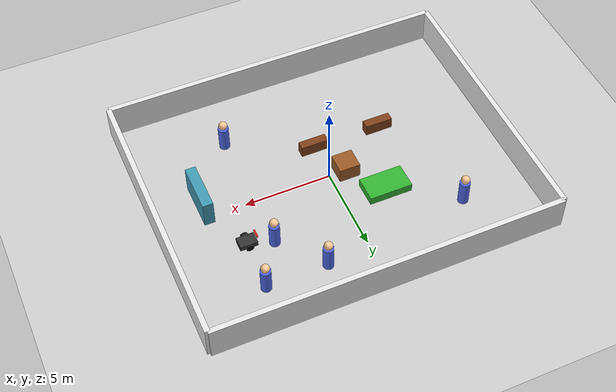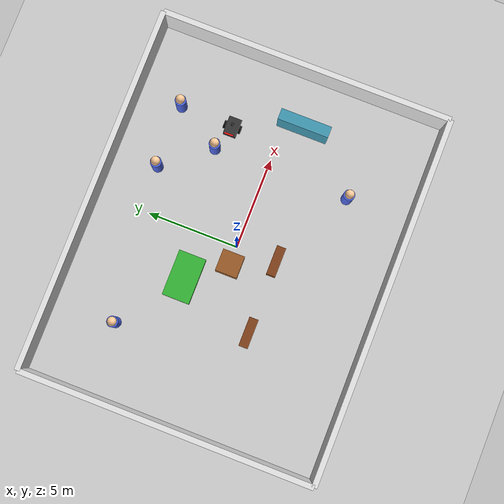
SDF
<?xml version="1.0"?>

<sdf version="1.9">

  <world name="elderly_final">

    <plugin filename="gz-sim-physics-system" name="gz::sim::systems::Physics"/>
    <plugin filename="gz-sim-user-commands-system" name="gz::sim::systems::UserCommands"/>
    <plugin filename="gz-sim-scene-broadcaster-system" name="gz::sim::systems::SceneBroadcaster"/>
    <plugin filename="gz-sim-sensors-system" name="gz::sim::systems::Sensors">
      <render_engine>ogre2</render_engine>
    </plugin>

    <!-- ==================== 场景环境 ==================== -->

    <scene>
      <ambient>0.4 0.4 0.4 1</ambient>
      <background>0.7 0.7 0.7 1</background>
      <shadows>true</shadows>
    </scene>

    <!-- ==================== 光源 ==================== -->

    <light name="sun" type="directional">

      <pose>0 0 10 0 0 0</pose>

      <cast_shadows>true</cast_shadows>

      <diffuse>1 1 1 1</diffuse>
      <specular>0.3 0.3 0.3 1</specular>

      <direction>-0.5 0.5 -1</direction>

    </light>

    <!-- ==================== 地面 ==================== -->

    <model name="ground">

      <static>true</static>

      <link name="link">

        <!-- 地面碰撞 -->
        <collision name="collision">

          <geometry>

            <plane>
              <normal>0 0 1</normal>
              <size>30 30</size>
            </plane>

          </geometry>

        </collision>

        <!-- 地面显示 -->

        <visual name="visual">

          <geometry>

            <plane>
              <normal>0 0 1</normal>
              <size>30 30</size>
            </plane>

          </geometry>

          <material>

            <ambient>0.7 0.7 0.7 1</ambient>

            <diffuse>0.8 0.8 0.8 1</diffuse>

            <specular>0.1 0.1 0.1 1</specular>

          </material>

        </visual>

      </link>

    </model>

    <!-- ==================== 左侧墙 ==================== -->

    <model name="wall_left">

      <static>true</static>

      <pose>-10 0 1 0 0 0</pose>

      <link name="link">

        <collision name="collision">

          <geometry>

            <box>
              <size>0.3 16 2</size>
            </box>

          </geometry>

        </collision>

        <visual name="visual">

          <geometry>

            <box>
              <size>0.3 16 2</size>
            </box>

          </geometry>

          <material>

            <ambient>0.8 0.8 0.8 1</ambient>

            <diffuse>0.9 0.9 0.9 1</diffuse>

            <specular>0.1 0.1 0.1 1</specular>

          </material>

        </visual>

      </link>

    </model>

    <!-- ==================== 右侧墙 ==================== -->

    <model name="wall_right">

      <static>true</static>

      <pose>10 0 1 0 0 0</pose>

      <link name="link">

        <collision name="collision">

          <geometry>

            <box>
              <size>0.3 16 2</size>
            </box>

          </geometry>

        </collision>

        <visual name="visual">

          <geometry>

            <box>
              <size>0.3 16 2</size>
            </box>

          </geometry>

          <material>

            <ambient>0.8 0.8 0.8 1</ambient>

            <diffuse>0.9 0.9 0.9 1</diffuse>

            <specular>0.1 0.1 0.1 1</specular>

          </material>

        </visual>

      </link>

    </model>

    <!-- ==================== 上侧墙 ==================== -->

    <model name="wall_back">

      <static>true</static>

      <pose>0 8 1 0 0 0</pose>

      <link name="link">

        <collision name="collision">

          <geometry>

            <box>
              <size>20 0.3 2</size>
            </box>

          </geometry>

        </collision>

        <visual name="visual">

          <geometry>

            <box>
              <size>20 0.3 2</size>
            </box>

          </geometry>

          <material>

            <ambient>0.8 0.8 0.8 1</ambient>

            <diffuse>0.9 0.9 0.9 1</diffuse>

            <specular>0.1 0.1 0.1 1</specular>

          </material>

        </visual>

      </link>

    </model>

    <!-- ==================== 下侧墙 ==================== -->

    <model name="wall_front">

      <static>true</static>

      <pose>0 -8 1 0 0 0</pose>

      <link name="link">

        <collision name="collision">

          <geometry>

            <box>
              <size>20 0.3 2</size>
            </box>

          </geometry>

        </collision>

        <visual name="visual">

          <geometry>

            <box>
              <size>20 0.3 2</size>
            </box>

          </geometry>

          <material>

            <ambient>0.8 0.8 0.8 1</ambient>

            <diffuse>0.9 0.9 0.9 1</diffuse>

            <specular>0.1 0.1 0.1 1</specular>

          </material>

        </visual>

      </link>

    </model>

    <!-- ==================== 养老院户外障碍物 ==================== -->

    <!-- Flower bed: outside the main walking lane, with clearance around it. -->
    <model name="final_flowerbed">
      <static>true</static><pose>-2.5 2.0 0.25 0 0 0</pose>
      <link name="link"><collision name="collision"><geometry><box><size>2.5 1.5 0.5</size></box></geometry></collision>
      <visual name="visual"><geometry><box><size>2.5 1.5 0.5</size></box></geometry><material><ambient>0.15 0.5 0.15 1</ambient><diffuse>0.2 0.7 0.2 1</diffuse></material></visual></link>
    </model>

    <!-- Two simple benches along the lower edge of the safe activity area. -->
    <model name="final_bench_west">
      <static>true</static><pose>-4.0 -2.2 0.35 0 0 0</pose>
      <link name="link"><collision name="collision"><geometry><box><size>1.6 0.5 0.7</size></box></geometry></collision>
      <visual name="visual"><geometry><box><size>1.6 0.5 0.7</size></box></geometry><material><ambient>0.35 0.18 0.08 1</ambient><diffuse>0.5 0.25 0.1 1</diffuse></material></visual></link>
    </model>
    <model name="final_bench_east">
      <static>true</static><pose>0.0 -2.2 0.35 0 0 0</pose>
      <link name="link"><collision name="collision"><geometry><box><size>1.6 0.5 0.7</size></box></geometry></collision>
      <visual name="visual"><geometry><box><size>1.6 0.5 0.7</size></box></geometry><material><ambient>0.35 0.18 0.08 1</ambient><diffuse>0.5 0.25 0.1 1</diffuse></material></visual></link>
    </model>

    <!-- Small table in the west-central area; the main route remains open. -->
    <model name="final_table">
      <static>true</static><pose>-1.0 0.0 0.45 0 0 0</pose>
      <link name="link"><collision name="collision"><geometry><box><size>1.2 1.2 0.9</size></box></geometry></collision>
      <visual name="visual"><geometry><box><size>1.2 1.2 0.9</size></box></geometry><material><ambient>0.45 0.25 0.1 1</ambient><diffuse>0.6 0.35 0.15 1</diffuse></material></visual></link>
    </model>

    <!-- Short partition in the outer east area, away from the companion lane. -->
    <model name="final_partition">
      <static>true</static><pose>7.2 -1.0 0.8 0 0 0</pose>
      <link name="link"><collision name="collision"><geometry><box><size>0.6 2.8 1.6</size></box></geometry></collision>
      <visual name="visual"><geometry><box><size>0.6 2.8 1.6</size></box></geometry><material><ambient>0.2 0.45 0.55 1</ambient><diffuse>0.25 0.6 0.7 1</diffuse></material></visual></link>
    </model>

    <!-- ==================== 老人模型 ==================== -->

    <model name="elder">

      <!-- 老人整体位置 -->
      <pose>4.5 3 0 0 0 3.14159</pose>

      <static>false</static>

      <!-- 老人身体 -->

      <link name="body_link">

        <pose>0 0 0.75 0 0 0</pose>

        <gravity>false</gravity>

        <inertial>
          <mass>60.0</mass>
          <inertia>
            <ixx>12.6</ixx>
            <iyy>12.6</iyy>
            <izz>2.7</izz>
            <ixy>0</ixy>
            <ixz>0</ixz>
            <iyz>0</iyz>
          </inertia>
        </inertial>

        <collision name="body_collision">

          <geometry>

            <cylinder>
              <radius>0.3</radius>
              <length>1.5</length>
            </cylinder>

          </geometry>

        </collision>

        <visual name="body_visual">

          <geometry>

            <cylinder>
              <radius>0.3</radius>
              <length>1.5</length>
            </cylinder>

          </geometry>

          <material>

            <ambient>0.2 0.3 0.8 1</ambient>

            <diffuse>0.3 0.4 0.9 1</diffuse>

          </material>

        </visual>

      </link>

      <!-- 老人头部 -->

      <link name="head_link">

        <pose>0 0 1.7 0 0 0</pose>

        <gravity>false</gravity>

        <inertial>
          <mass>5.0</mass>
          <inertia>
            <ixx>0.125</ixx>
            <iyy>0.125</iyy>
            <izz>0.125</izz>
            <ixy>0</ixy>
            <ixz>0</ixz>
            <iyz>0</iyz>
          </inertia>
        </inertial>

        <collision name="head_collision">

          <geometry>

            <sphere>
              <radius>0.25</radius>
            </sphere>

          </geometry>

        </collision>

        <visual name="head_visual">

          <geometry>

            <sphere>
              <radius>0.25</radius>
            </sphere>

          </geometry>

          <material>

            <ambient>0.9 0.7 0.5 1</ambient>

            <diffuse>1 0.8 0.6 1</diffuse>

          </material>

        </visual>

      </link>

      <joint name="head_fixed_joint" type="fixed">
        <parent>body_link</parent>
        <child>head_link</child>
      </joint>

      <plugin
        filename="gz-sim-velocity-control-system"
        name="gz::sim::systems::VelocityControl">
        <topic>/model/elder/cmd_vel</topic>
      </plugin>

    </model>
    <!-- ==================== Additional V2.0 elderly models ==================== -->
    <!-- Original `elder` model is retained for V1 compatibility. -->
    <model name="elder_01">
      <pose>2.5 5.5 0 0 0 3.14159</pose><static>false</static>
      <link name="body_link"><pose>0 0 0.75 0 0 0</pose><gravity>false</gravity><inertial><mass>60.0</mass><inertia><ixx>12.6</ixx><iyy>12.6</iyy><izz>2.7</izz><ixy>0</ixy><ixz>0</ixz><iyz>0</iyz></inertia></inertial><collision name="body_collision"><geometry><cylinder><radius>0.3</radius><length>1.5</length></cylinder></geometry></collision><visual name="body_visual"><geometry><cylinder><radius>0.3</radius><length>1.5</length></cylinder></geometry><material><ambient>0.2 0.3 0.8 1</ambient><diffuse>0.3 0.4 0.9 1</diffuse></material></visual></link>
      <link name="head_link"><pose>0 0 1.7 0 0 0</pose><gravity>false</gravity><inertial><mass>5.0</mass><inertia><ixx>0.125</ixx><iyy>0.125</iyy><izz>0.125</izz><ixy>0</ixy><ixz>0</ixz><iyz>0</iyz></inertia></inertial><collision name="head_collision"><geometry><sphere><radius>0.25</radius></sphere></geometry></collision><visual name="head_visual"><geometry><sphere><radius>0.25</radius></sphere></geometry><material><ambient>0.9 0.7 0.5 1</ambient><diffuse>1 0.8 0.6 1</diffuse></material></visual></link>
      <joint name="head_fixed_joint" type="fixed"><parent>body_link</parent><child>head_link</child></joint>
      <plugin filename="gz-sim-velocity-control-system" name="gz::sim::systems::VelocityControl"><topic>/model/elder_01/cmd_vel</topic></plugin>
    </model>
    <model name="elder_02">
      <pose>-6.0 4.5 0 0 0 3.14159</pose><static>false</static>
      <link name="body_link"><pose>0 0 0.75 0 0 0</pose><gravity>false</gravity><inertial><mass>60.0</mass><inertia><ixx>12.6</ixx><iyy>12.6</iyy><izz>2.7</izz><ixy>0</ixy><ixz>0</ixz><iyz>0</iyz></inertia></inertial><collision name="body_collision"><geometry><cylinder><radius>0.3</radius><length>1.5</length></cylinder></geometry></collision><visual name="body_visual"><geometry><cylinder><radius>0.3</radius><length>1.5</length></cylinder></geometry><material><ambient>0.2 0.3 0.8 1</ambient><diffuse>0.3 0.4 0.9 1</diffuse></material></visual></link>
      <link name="head_link"><pose>0 0 1.7 0 0 0</pose><gravity>false</gravity><inertial><mass>5.0</mass><inertia><ixx>0.125</ixx><iyy>0.125</iyy><izz>0.125</izz><ixy>0</ixy><ixz>0</ixz><iyz>0</iyz></inertia></inertial><collision name="head_collision"><geometry><sphere><radius>0.25</radius></sphere></geometry></collision><visual name="head_visual"><geometry><sphere><radius>0.25</radius></sphere></geometry><material><ambient>0.9 0.7 0.5 1</ambient><diffuse>1 0.8 0.6 1</diffuse></material></visual></link>
      <joint name="head_fixed_joint" type="fixed"><parent>body_link</parent><child>head_link</child></joint>
      <plugin filename="gz-sim-velocity-control-system" name="gz::sim::systems::VelocityControl"><topic>/model/elder_02/cmd_vel</topic></plugin>
    </model>
    <model name="elder_03">
      <pose>6.0 5.5 0 0 0 3.14159</pose><static>false</static>
      <link name="body_link"><pose>0 0 0.75 0 0 0</pose><gravity>false</gravity><inertial><mass>60.0</mass><inertia><ixx>12.6</ixx><iyy>12.6</iyy><izz>2.7</izz><ixy>0</ixy><ixz>0</ixz><iyz>0</iyz></inertia></inertial><collision name="body_collision"><geometry><cylinder><radius>0.3</radius><length>1.5</length></cylinder></geometry></collision><visual name="body_visual"><geometry><cylinder><radius>0.3</radius><length>1.5</length></cylinder></geometry><material><ambient>0.2 0.3 0.8 1</ambient><diffuse>0.3 0.4 0.9 1</diffuse></material></visual></link>
      <link name="head_link"><pose>0 0 1.7 0 0 0</pose><gravity>false</gravity><inertial><mass>5.0</mass><inertia><ixx>0.125</ixx><iyy>0.125</iyy><izz>0.125</izz><ixy>0</ixy><ixz>0</ixz><iyz>0</iyz></inertia></inertial><collision name="head_collision"><geometry><sphere><radius>0.25</radius></sphere></geometry></collision><visual name="head_visual"><geometry><sphere><radius>0.25</radius></sphere></geometry><material><ambient>0.9 0.7 0.5 1</ambient><diffuse>1 0.8 0.6 1</diffuse></material></visual></link>
      <joint name="head_fixed_joint" type="fixed"><parent>body_link</parent><child>head_link</child></joint>
      <plugin filename="gz-sim-velocity-control-system" name="gz::sim::systems::VelocityControl"><topic>/model/elder_03/cmd_vel</topic></plugin>
    </model>
    <model name="elder_04">
      <pose>4.5 -4.5 0 0 0 3.14159</pose><static>false</static>
      <link name="body_link"><pose>0 0 0.75 0 0 0</pose><gravity>false</gravity><inertial><mass>60.0</mass><inertia><ixx>12.6</ixx><iyy>12.6</iyy><izz>2.7</izz><ixy>0</ixy><ixz>0</ixz><iyz>0</iyz></inertia></inertial><collision name="body_collision"><geometry><cylinder><radius>0.3</radius><length>1.5</length></cylinder></geometry></collision><visual name="body_visual"><geometry><cylinder><radius>0.3</radius><length>1.5</length></cylinder></geometry><material><ambient>0.2 0.3 0.8 1</ambient><diffuse>0.3 0.4 0.9 1</diffuse></material></visual></link>
      <link name="head_link"><pose>0 0 1.7 0 0 0</pose><gravity>false</gravity><inertial><mass>5.0</mass><inertia><ixx>0.125</ixx><iyy>0.125</iyy><izz>0.125</izz><ixy>0</ixy><ixz>0</ixz><iyz>0</iyz></inertia></inertial><collision name="head_collision"><geometry><sphere><radius>0.25</radius></sphere></geometry></collision><visual name="head_visual"><geometry><sphere><radius>0.25</radius></sphere></geometry><material><ambient>0.9 0.7 0.5 1</ambient><diffuse>1 0.8 0.6 1</diffuse></material></visual></link>
      <joint name="head_fixed_joint" type="fixed"><parent>body_link</parent><child>head_link</child></joint>
      <plugin filename="gz-sim-velocity-control-system" name="gz::sim::systems::VelocityControl"><topic>/model/elder_04/cmd_vel</topic></plugin>
    </model>

<!-- ==================== 移动机器人 ==================== -->

<include>

  <uri>model://simple_robot</uri>

  <name>elderly_robot</name>

  <!-- Start 1.46 m to the left/rear of the elder initial heading toward (3, 3). -->
  <pose>5.9 2.55 0.3 0 0 3.14159</pose>

</include>

  </world>

</sdf>

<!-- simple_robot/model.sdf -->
<sdf version="1.9">

  <model name="simple_robot">

    <static>false</static>

    <!-- 机器人整体位置 -->
    <pose>0 0 0.25 0 0 0</pose>

    <!--                    机器人底盘                     -->

    <link name="base_link">

      <inertial>
        <pose>-0.02 0 0 0 0 0</pose>
        <mass>5.0</mass>

        <inertia>
          <ixx>0.5</ixx>
          <iyy>0.5</iyy>
          <izz>0.5</izz>
          <ixy>0</ixy>
          <ixz>0</ixz>
          <iyz>0</iyz>
        </inertia>
      </inertial>

      <collision name="collision">

        <geometry>
          <box>
            <size>1.0 0.7 0.3</size>
          </box>
        </geometry>

      </collision>

      <visual name="visual">

        <geometry>
          <box>
            <size>1.0 0.7 0.3</size>
          </box>
        </geometry>

        <material>
          <ambient>0.15 0.15 0.15 1</ambient>
          <diffuse>0.2 0.2 0.2 1</diffuse>
        </material>

      </visual>

    </link>

    <!-- 2D lidar mounted above the chassis -->
    <link name="lidar_link">
      <pose>0 0 0.65 0 0 0</pose>
      <inertial><mass>0.05</mass><inertia><ixx>0.0001</ixx><iyy>0.0001</iyy><izz>0.0001</izz><ixy>0</ixy><ixz>0</ixz><iyz>0</iyz></inertia></inertial>
      <collision name="collision"><geometry><cylinder><radius>0.08</radius><length>0.06</length></cylinder></geometry></collision>
      <visual name="visual"><geometry><cylinder><radius>0.08</radius><length>0.06</length></cylinder></geometry><material><ambient>0.1 0.1 0.1 1</ambient><diffuse>0.15 0.15 0.15 1</diffuse></material></visual>
      <sensor name="lidar" type="gpu_lidar">
        <topic>/scan</topic><update_rate>10</update_rate><always_on>true</always_on><visualize>true</visualize><gz_frame_id>lidar_link</gz_frame_id>
        <lidar><scan><horizontal><samples>720</samples><resolution>1</resolution><min_angle>-3.141592653589793</min_angle><max_angle>3.141592653589793</max_angle></horizontal></scan><range><min>0.10</min><max>10.0</max><resolution>0.01</resolution></range></lidar>
      </sensor>
    </link>
    <joint name="lidar_joint" type="fixed"><parent>base_link</parent><child>lidar_link</child></joint>

    <!--                      左轮                         -->
<link name="left_wheel">

  <pose>0 0.42 0 0 0 0</pose>

  <inertial>
    <mass>0.5</mass>
    <inertia>
      <ixx>0.02</ixx>
      <iyy>0.02</iyy>
      <izz>0.02</izz>
      <ixy>0</ixy>
      <ixz>0</ixz>
      <iyz>0</iyz>
    </inertia>
  </inertial>

  <collision name="collision">
    <pose>0 0 0 1.570796 0 0</pose>

    <geometry>
      <cylinder>
        <radius>0.22</radius>
        <length>0.002</length>
      </cylinder>
    </geometry>
    <surface>
      <friction>
        <ode>
          <mu>0.8</mu>
          <mu2>0.8</mu2>
        </ode>
      </friction>
    </surface>
  </collision>

  <visual name="visual">
    <pose>0 0 0 1.570796 0 0</pose>

    <geometry>
      <cylinder>
        <radius>0.22</radius>
        <length>0.12</length>
      </cylinder>
    </geometry>

    <material>
      <ambient>0.05 0.05 0.05 1</ambient>
      <diffuse>0.05 0.05 0.05 1</diffuse>
    </material>
  </visual>

</link>

    <!--                      右轮                         -->

<link name="right_wheel">

  <pose>0 -0.42 0 0 0 0</pose>

  <inertial>
    <mass>0.5</mass>
    <inertia>
      <ixx>0.02</ixx>
      <iyy>0.02</iyy>
      <izz>0.02</izz>
      <ixy>0</ixy>
      <ixz>0</ixz>
      <iyz>0</iyz>
    </inertia>
  </inertial>

  <collision name="collision">
    <pose>0 0 0 1.570796 0 0</pose>

    <geometry>
      <cylinder>
        <radius>0.22</radius>
        <length>0.002</length>
      </cylinder>
    </geometry>
    <surface>
      <friction>
        <ode>
          <mu>0.8</mu>
          <mu2>0.8</mu2>
        </ode>
      </friction>
    </surface>
  </collision>

  <visual name="visual">
    <pose>0 0 0 1.570796 0 0</pose>

    <geometry>
      <cylinder>
        <radius>0.22</radius>
        <length>0.12</length>
      </cylinder>
    </geometry>

    <material>
      <ambient>0.05 0.05 0.05 1</ambient>
      <diffuse>0.05 0.05 0.05 1</diffuse>
    </material>
  </visual>

</link>

    <!--                 后部被动球形支撑                  -->

    <link name="rear_caster">

      <pose>-0.40 0 -0.14 0 0 0</pose>

      <inertial>
        <mass>0.08</mass>
        <inertia>
          <ixx>0.000205</ixx>
          <iyy>0.000205</iyy>
          <izz>0.000205</izz>
          <ixy>0</ixy>
          <ixz>0</ixz>
          <iyz>0</iyz>
        </inertia>
      </inertial>

      <collision name="collision">
        <geometry>
          <sphere>
            <radius>0.08</radius>
          </sphere>
        </geometry>
        <surface>
          <friction>
            <ode>
              <mu>0.2</mu>
              <mu2>0.2</mu2>
            </ode>
          </friction>
        </surface>
      </collision>

      <visual name="visual">
        <geometry>
          <sphere>
            <radius>0.08</radius>
          </sphere>
        </geometry>
        <material>
          <ambient>0.15 0.15 0.15 1</ambient>
          <diffuse>0.2 0.2 0.2 1</diffuse>
        </material>
      </visual>

    </link>

    <joint name="rear_caster_joint" type="ball">
      <parent>base_link</parent>
      <child>rear_caster</child>
    </joint>

    <!--                    左轮关节                       -->

    <joint name="left_wheel_joint"
           type="revolute">

      <parent>base_link</parent>
      <child>left_wheel</child>

      <axis>

        <!-- 轮子绕 Y 轴旋转 -->
        <xyz>0 1 0</xyz>

        <dynamics>
          <damping>0.1</damping>
          <friction>0.0</friction>
        </dynamics>

      </axis>

    </joint>

    <!--                    右轮关节                       -->

    <joint name="right_wheel_joint"
           type="revolute">

      <parent>base_link</parent>
      <child>right_wheel</child>

      <axis>

        <!-- 轮子绕 Y 轴旋转 -->
        <xyz>0 1 0</xyz>

        <dynamics>
          <damping>0.1</damping>
          <friction>0.0</friction>
        </dynamics>

      </axis>

    </joint>

    <!--                     前方标记                      -->

    <link name="front_marker">

      <pose>0.52 0 0.42 0 0 0</pose>

      <visual name="visual">

        <geometry>

          <box>
            <size>0.08 0.5 0.08</size>
          </box>

        </geometry>

        <material>

          <ambient>0.8 0.1 0.1 1</ambient>
          <diffuse>1.0 0.1 0.1 1</diffuse>

        </material>

      </visual>

    </link>

    <!--                  Gazebo 差速驱动                  -->

    <plugin
      filename="gz-sim-diff-drive-system"
      name="gz::sim::systems::DiffDrive">

      <left_joint>left_wheel_joint</left_joint>

      <right_joint>right_wheel_joint</right_joint>

      <wheel_separation>0.84</wheel_separation>

      <wheel_radius>0.22</wheel_radius>

      <max_linear_velocity>1.0</max_linear_velocity>

      <max_angular_velocity>2.0</max_angular_velocity>

      <topic>/cmd_vel</topic>

      <odom_topic>/odom</odom_topic>

      <tf_topic>/tf</tf_topic>

      <frame_id>odom</frame_id>

      <child_frame_id>base_link</child_frame_id>

    </plugin>

  </model>

</sdf>
